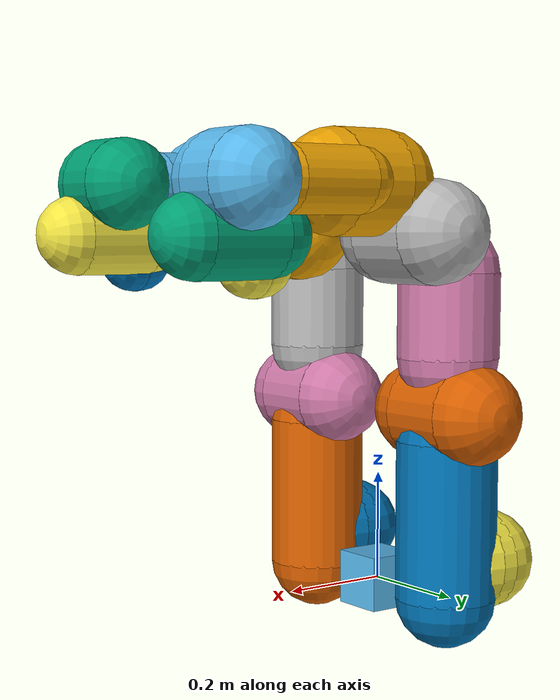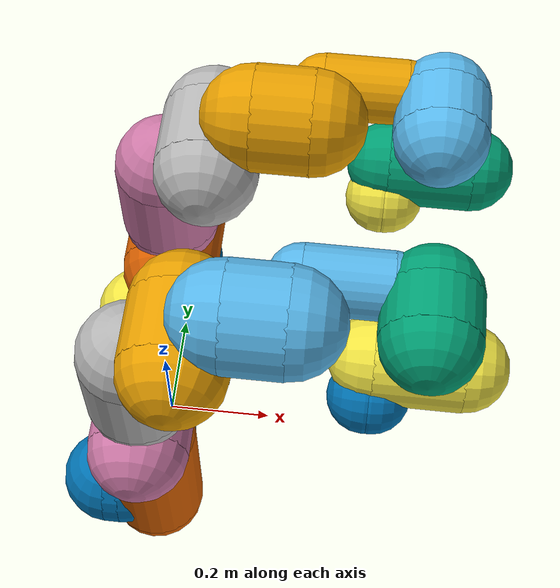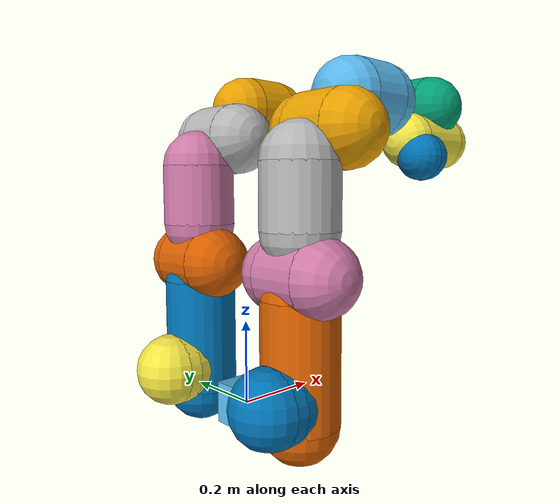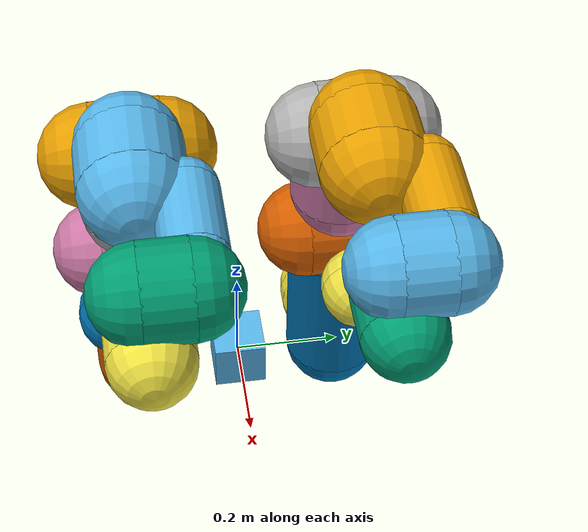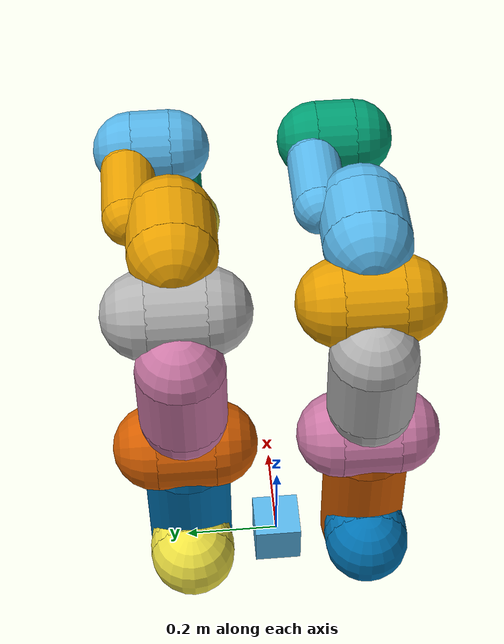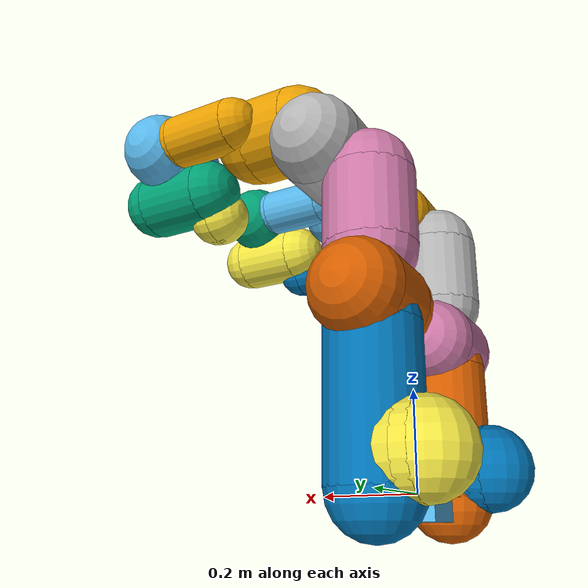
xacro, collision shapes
<?xml version='1.0' encoding='utf-8'?>
<robot xmlns:xacro="http://www.ros.org/wiki/xacro" name="dual_panda">
  <xacro:arg name="arm_id_1" default="mj_left"/> <!-- Name of this panda -->
  <xacro:arg name="arm_id_2" default="mj_right"/> <!-- Name of this panda -->
  <xacro:arg name="hand_1" default="false"/> <!-- Should a franka_gripper be mounted at the flange?" -->
  <xacro:arg name="hand_2" default="false"/> <!-- Should a franka_gripper be mounted at the flange?" -->
  <xacro:arg name="initial_positions_1" default="0.0 ${-pi/4} 0.0 ${-3*pi/4} 0.0 ${pi/2} ${pi/4}"/> <!-- initial joint positions of the robot-->
  <xacro:arg name="initial_positions_2" default="0.0 ${-pi/4} 0.0 ${-3*pi/4} 0.0 ${pi/2} ${pi/4}"/> <!-- initial joint positions of the robot-->

  <link name="world"/>
  <joint name="world_to_common" type="fixed">
    <parent link="world"/>
    <child link="common_link"/>
    <origin rpy="0 0 0" xyz="0 0 0"/>
  </joint>
  <link name="common_link">
    <visual>
      <geometry>
         <box size="0.1 0.1 0.1"/>
      </geometry>
      <origin rpy="0 0 0" xyz="0 0 0"/>
    </visual>
    <collision>
      <geometry>
         <box size="0.1 0.1 0.1"/>
      </geometry>
      <origin rpy="0 0 0" xyz="0 0 0"/>
    </collision>
  </link>

  <xacro:include filename="$(find franka_description)/robots/common/panda_arm.xacro"/>

  <link name="wam/sensor/zed"/>
  <joint name="zed_joint" type="fixed">
    <parent link="common_link"/>
    <child link="wam/sensor/zed"/>
    <origin xyz="0 0 0.73" rpy="0 ${pi*15/180} 0"/>
  </joint>
  <xacro:panda_arm arm_id="$(arg arm_id_1)" connected_to="common_link" rpy="0 0 0"  xyz="0 +0.19 0" safety_distance="0.03"/>
  <xacro:panda_arm arm_id="$(arg arm_id_2)" connected_to="common_link" rpy="0 0 0"  xyz="0 -0.19 0" safety_distance="0.03"/>

  <xacro:if value="$(arg hand_1)">
    <xacro:include filename="$(find franka_description)/robots/common/hand.xacro"/>
    <xacro:hand ns="$(arg arm_id_1)" rpy="0 0 ${-pi/4}" connected_to="$(arg arm_id_1)_link8" safety_distance="0.03"/>
  </xacro:if>
  <xacro:if value="$(arg hand_2)">
    <xacro:include filename="$(find franka_description)/robots/common/hand.xacro"/>
    <xacro:hand ns="$(arg arm_id_2)" rpy="0 0 ${-pi/4}" connected_to="$(arg arm_id_2)_link8" safety_distance="0.03"/>
  </xacro:if>
  <xacro:include filename="$(find franka_description)/robots/sim/dual_panda_arm_sim.ros2_control.xacro"/>
  <xacro:dual_panda_mjros_ros2_control
      ns_1="$(arg arm_id_1)"
      ns_2="$(arg arm_id_2)"
      hand_1="$(arg hand_1)"
      hand_2="$(arg hand_2)"
      initial_positions_1="$(arg initial_positions_1)"
      initial_positions_2="$(arg initial_positions_2)"/>
</robot>

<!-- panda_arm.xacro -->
<robot xmlns:xacro="http://www.ros.org/wiki/xacro" name="panda">
  <!-- safety_distance: Minimum safety distance in [m] by which the collision volumes are expanded and which is enforced during robot motions -->
  <!-- arm_id: Namespace of the panda arm. Serves to differentiate between arms in case of multiple instances. -->
  <xacro:macro name="panda_arm" params="arm_id:='panda' description_pkg:='franka_description' connected_to:='' xyz:='0 0 0' rpy:='0 0 0' safety_distance:=0 add_inertials:=false">
    <xacro:unless value="${not connected_to}">
      <joint name="${arm_id}_joint_${connected_to}" type="fixed">
        <parent link="${connected_to}"/>
        <child link="${arm_id}_link0"/>
        <origin rpy="${rpy}" xyz="${xyz}"/>
      </joint>
    </xacro:unless>
    <link name="${arm_id}_link0">
      <xacro:if value="${add_inertials}">
        <inertial>
          <origin rpy="0 0 0" xyz="0 0 0.05"/>
          <mass value="2.9"/>
          <inertia ixx="0.1" ixy="0" ixz="0" iyy="0.1" iyz="0" izz="0.1"/>
        </inertial>
      </xacro:if>
      <visual>
        <geometry>
          <mesh filename="package://${description_pkg}/meshes/visual/link0.dae"/>
        </geometry>
      </visual>
      <collision>
        <origin xyz="-0.075 0 0.06" rpy="0 ${pi/2} 0"/>
        <geometry>
          <cylinder radius="${0.06+safety_distance}" length="0.03" />
        </geometry>
      </collision>
      <collision>
        <origin xyz="-0.06 0 0.06" rpy="0 0 0"/>
        <geometry>
          <sphere radius="${0.06+safety_distance}" />
        </geometry>
      </collision>
      <collision>
        <origin xyz="-0.09 0 0.06" rpy="0 0 0"/>
        <geometry>
          <sphere radius="${0.06+safety_distance}" />
        </geometry>
      </collision>
    </link>
    <link name="${arm_id}_link1">
      <xacro:if value="${add_inertials}">
        <inertial>
          <origin rpy="0 0 0" xyz="0 -0.04 -0.05"/>
          <mass value="2.7"/>
          <inertia ixx="0.1" ixy="0" ixz="0" iyy="0.1" iyz="0" izz="0.1"/>
        </inertial>
      </xacro:if>
      <visual>
        <geometry>
          <mesh filename="package://${description_pkg}/meshes/visual/link1.dae"/>
        </geometry>
      </visual>
      <collision>
        <origin xyz="0 0 -0.1915" rpy="0 0 0"/>
        <geometry>
          <cylinder radius="${0.06+safety_distance}" length="0.2830" />
        </geometry>
      </collision>
      <collision>
        <origin xyz="0 0 -0.333" rpy="0 0 0"/>
        <geometry>
          <sphere radius="${0.06+safety_distance}" />
        </geometry>
      </collision>
      <collision>
        <origin xyz="0 0 -0.05" rpy="0 0 0"/>
        <geometry>
          <sphere radius="${0.06+safety_distance}" />
        </geometry>
      </collision>
    </link>
    <joint name="${arm_id}_joint1" type="revolute">
      <safety_controller k_position="100.0" k_velocity="40.0" soft_lower_limit="-2.8973" soft_upper_limit="2.8973"/>
      <origin rpy="0 0 0" xyz="0 0 0.333"/>
      <parent link="${arm_id}_link0"/>
      <child link="${arm_id}_link1"/>
      <axis xyz="0 0 1"/>
      <limit effort="87" lower="-2.8973" upper="2.8973" velocity="2.1750"/>
    </joint>
    <link name="${arm_id}_link2">
      <xacro:if value="${add_inertials}">
        <inertial>
          <origin rpy="0 0 0" xyz="0 -0.04 0.06"/>
          <mass value="2.73"/>
          <inertia ixx="0.1" ixy="0" ixz="0" iyy="0.1" iyz="0" izz="0.1"/>
        </inertial>
      </xacro:if>
      <visual>
        <geometry>
          <mesh filename="package://${description_pkg}/meshes/visual/link2.dae"/>
        </geometry>
      </visual>
      <collision>
        <origin xyz="0 0 0" rpy="0 0 0"/>
        <geometry>
          <cylinder radius="${0.06+safety_distance}" length="0.12" />
        </geometry>
      </collision>
      <collision>
        <origin xyz="0 0 -0.06" rpy="0 0 0"/>
        <geometry>
          <sphere radius="${0.06+safety_distance}" />
        </geometry>
      </collision>
      <collision>
        <origin xyz="0 0 0.06" rpy="0 0 0"/>
        <geometry>
          <sphere radius="${0.06+safety_distance}" />
        </geometry>
      </collision>
    </link>
    <joint name="${arm_id}_joint2" type="revolute">
      <safety_controller k_position="100.0" k_velocity="40.0" soft_lower_limit="-1.7628" soft_upper_limit="1.7628"/>
      <origin rpy="${-pi/2} 0 0" xyz="0 0 0"/>
      <parent link="${arm_id}_link1"/>
      <child link="${arm_id}_link2"/>
      <axis xyz="0 0 1"/>
      <limit effort="87" lower="-1.7628" upper="1.7628" velocity="2.1750"/>
    </joint>
    <link name="${arm_id}_link3">
      <xacro:if value="${add_inertials}">
        <inertial>
          <origin rpy="0 0 0" xyz="0.01 0.01 -0.05"/>
          <mass value="2.04"/>
          <inertia ixx="0.1" ixy="0" ixz="0" iyy="0.1" iyz="0" izz="0.1"/>
        </inertial>
      </xacro:if>
      <visual>
        <geometry>
          <mesh filename="package://${description_pkg}/meshes/visual/link3.dae"/>
        </geometry>
      </visual>
      <collision>
        <origin xyz="0 0 -0.145" rpy="0 0 0"/>
        <geometry>
          <cylinder radius="${0.06+safety_distance}" length="0.15" />
        </geometry>
      </collision>
      <collision>
        <origin xyz="0 0 -0.22" rpy="0 0 0"/>
        <geometry>
          <sphere radius="${0.06+safety_distance}" />
        </geometry>
      </collision>
      <collision>
        <origin xyz="0 0 -0.07" rpy="0 0 0"/>
        <geometry>
          <sphere radius="${0.06+safety_distance}" />
        </geometry>
      </collision>
    </link>
    <joint name="${arm_id}_joint3" type="revolute">
      <safety_controller k_position="100.0" k_velocity="40.0" soft_lower_limit="-2.8973" soft_upper_limit="2.8973"/>
      <origin rpy="${pi/2} 0 0" xyz="0 -0.316 0"/>
      <parent link="${arm_id}_link2"/>
      <child link="${arm_id}_link3"/>
      <axis xyz="0 0 1"/>
      <limit effort="87" lower="-2.8973" upper="2.8973" velocity="2.1750"/>
    </joint>
    <link name="${arm_id}_link4">
      <xacro:if value="${add_inertials}">
        <inertial>
          <origin rpy="0 0 0" xyz="-0.03 0.03 0.02"/>
          <mass value="2.08"/>
          <inertia ixx="0.1" ixy="0" ixz="0" iyy="0.1" iyz="0" izz="0.1"/>
        </inertial>
      </xacro:if>
      <visual>
        <geometry>
          <mesh filename="package://${description_pkg}/meshes/visual/link4.dae"/>
        </geometry>
      </visual>
      <collision>
        <origin xyz="0 0 0" rpy="0 0 0"/>
        <geometry>
          <cylinder radius="${0.06+safety_distance}" length="0.12" />
        </geometry>
      </collision>
      <collision>
        <origin xyz="0 0 0.06" rpy="0 0 0"/>
        <geometry>
          <sphere radius="${0.06+safety_distance}" />
        </geometry>
      </collision>
      <collision>
        <origin xyz="0 0 -0.06" rpy="0 0 0"/>
        <geometry>
          <sphere radius="${0.06+safety_distance}" />
        </geometry>
      </collision>
    </link>
    <joint name="${arm_id}_joint4" type="revolute">
      <safety_controller k_position="100.0" k_velocity="40.0" soft_lower_limit="-3.0718" soft_upper_limit="-0.0698"/>
      <origin rpy="${pi/2} 0 0" xyz="0.0825 0 0"/>
      <parent link="${arm_id}_link3"/>
      <child link="${arm_id}_link4"/>
      <axis xyz="0 0 1"/>
      <limit effort="87" lower="-3.0718" upper="-0.0698" velocity="2.1750"/>
    </joint>
    <link name="${arm_id}_link5">
      <xacro:if value="${add_inertials}">
        <inertial>
          <origin rpy="0 0 0" xyz="0 0.04 -0.12"/>
          <mass value="3.0"/>
          <inertia ixx="0.1" ixy="0" ixz="0" iyy="0.1" iyz="0" izz="0.1"/>
        </inertial>
      </xacro:if>
      <visual>
        <geometry>
          <mesh filename="package://${description_pkg}/meshes/visual/link5.dae"/>
        </geometry>
      </visual>
      <collision>
        <origin xyz="0 0 -0.26" rpy="0 0 0"/>
        <geometry>
          <cylinder radius="${0.06+safety_distance}" length="0.1" />
        </geometry>
      </collision>
      <collision>
        <origin xyz="0 0 -0.31" rpy="0 0 0"/>
        <geometry>
          <sphere radius="${0.06+safety_distance}" />
        </geometry>
      </collision>
      <collision>
        <origin xyz="0 0 -0.21" rpy="0 0 0"/>
        <geometry>
          <sphere radius="${0.06+safety_distance}" />
        </geometry>
      </collision>
      <collision>
        <origin xyz="0 0.08 -0.13" rpy="0 0 0"/>
        <geometry>
          <cylinder radius="${0.025+safety_distance}" length="0.14" />
        </geometry>
      </collision>
      <collision>
        <origin xyz="0 0.08 -0.06" rpy="0 0 0"/>
        <geometry>
          <sphere radius="${0.025+safety_distance}" />
        </geometry>
      </collision>
      <collision>
        <origin xyz="0 0.08 -0.20" rpy="0 0 0"/>
        <geometry>
          <sphere radius="${0.025+safety_distance}" />
        </geometry>
      </collision>

    </link>
    <joint name="${arm_id}_joint5" type="revolute">
      <safety_controller k_position="100.0" k_velocity="40.0" soft_lower_limit="-2.8973" soft_upper_limit="2.8973"/>
      <origin rpy="${-pi/2} 0 0" xyz="-0.0825 0.384 0"/>
      <parent link="${arm_id}_link4"/>
      <child link="${arm_id}_link5"/>
      <axis xyz="0 0 1"/>
      <limit effort="12" lower="-2.8973" upper="2.8973" velocity="2.6100"/>
    </joint>
    <link name="${arm_id}_link6">
      <xacro:if value="${add_inertials}">
        <inertial>
          <origin rpy="0 0 0" xyz="0.04 0 0"/>
          <mass value="1.3"/>
          <inertia ixx="0.1" ixy="0" ixz="0" iyy="0.1" iyz="0" izz="0.1"/>
        </inertial>
      </xacro:if>
      <visual>
        <geometry>
          <mesh filename="package://${description_pkg}/meshes/visual/link6.dae"/>
        </geometry>
      </visual>
      <collision>
        <origin xyz="0 0 -0.03" rpy="0 0 0"/>
        <geometry>
          <cylinder radius="${0.05+safety_distance}" length="0.08" />
        </geometry>
      </collision>
      <collision>
        <origin xyz="0 0 0.01" rpy="0 0 0"/>
        <geometry>
          <sphere radius="${0.05+safety_distance}" />
        </geometry>
      </collision>
      <collision>
        <origin xyz="0 0 -0.07" rpy="0 0 0"/>
        <geometry>
          <sphere radius="${0.05+safety_distance}" />
        </geometry>
      </collision>
    </link>
    <joint name="${arm_id}_joint6" type="revolute">
      <safety_controller k_position="100.0" k_velocity="40.0" soft_lower_limit="-0.0175" soft_upper_limit="3.7525"/>
      <origin rpy="${pi/2} 0 0" xyz="0 0 0"/>
      <parent link="${arm_id}_link5"/>
      <child link="${arm_id}_link6"/>
      <axis xyz="0 0 1"/>
      <limit effort="12" lower="-0.0175" upper="3.7525" velocity="2.6100"/>
    </joint>
    <link name="${arm_id}_link7">
      <xacro:if value="${add_inertials}">
        <inertial>
          <origin rpy="0 0 0" xyz="0 0 0.08"/>
          <mass value="0.2"/>
          <inertia ixx="0.1" ixy="0" ixz="0" iyy="0.1" iyz="0" izz="0.1"/>
        </inertial>
      </xacro:if>
      <visual>
        <geometry>
          <mesh filename="package://${description_pkg}/meshes/visual/link7.dae"/>
        </geometry>
      </visual>
      <collision>
        <origin xyz="0 0 0.01" rpy="0 0 0"/>
        <geometry>
          <cylinder radius="${0.04+safety_distance}" length="0.14" />
        </geometry>
      </collision>
      <collision>
        <origin xyz="0 0 0.08" rpy="0 0 0"/>
        <geometry>
          <sphere radius="${0.04+safety_distance}"  />
        </geometry>
      </collision>
      <collision>
        <origin xyz="0 0 -0.06" rpy="0 0 0"/>
        <geometry>
          <sphere radius="${0.04+safety_distance}"  />
        </geometry>
      </collision>
    </link>
    <joint name="${arm_id}_joint7" type="revolute">
      <safety_controller k_position="100.0" k_velocity="40.0" soft_lower_limit="-2.8973" soft_upper_limit="2.8973"/>
      <origin rpy="${pi/2} 0 0" xyz="0.088 0 0"/>
      <parent link="${arm_id}_link6"/>
      <child link="${arm_id}_link7"/>
      <axis xyz="0 0 1"/>
      <limit effort="12" lower="-2.8973" upper="2.8973" velocity="2.6100"/>
    </joint>
    <link name="${arm_id}_link8">
      <xacro:if value="${add_inertials}">
        <inertial>
          <origin rpy="0 0 0" xyz="0 0 0"/>
          <mass value="0.01"/>
          <inertia ixx="0.001" ixy="0" ixz="0" iyy="0.001" iyz="0" izz="0.001"/>
        </inertial>
      </xacro:if>
      <collision>
        <origin xyz="0.0424 0.0424 -0.0250" rpy="${pi} ${pi/2} ${pi/2}"/>
        <geometry>
          <cylinder radius="${0.03+safety_distance}"  length="0.01" />
        </geometry>
      </collision>
      <collision>
        <origin xyz="0.0424 0.0424 -0.02" rpy="0 0 0"/>
        <geometry>
          <sphere radius="${0.03+safety_distance}"  />
        </geometry>
      </collision>
      <collision>
        <origin xyz="0.0424 0.0424 -0.03" rpy="0 0 0"/>
        <geometry>
          <sphere radius="${0.03+safety_distance}"  />
        </geometry>
      </collision>
    </link>
    <joint name="${arm_id}_joint8" type="fixed">
      <origin rpy="0 0 0" xyz="0 0 0.107"/>
      <parent link="${arm_id}_link7"/>
      <child link="${arm_id}_link8"/>
    </joint>
  </xacro:macro>
</robot>
